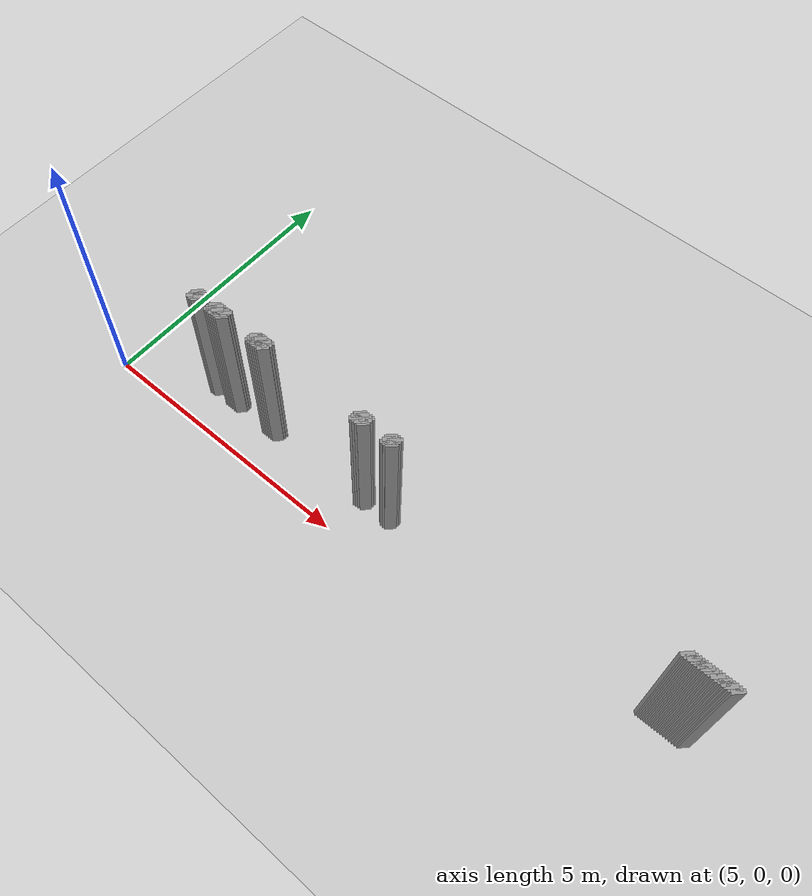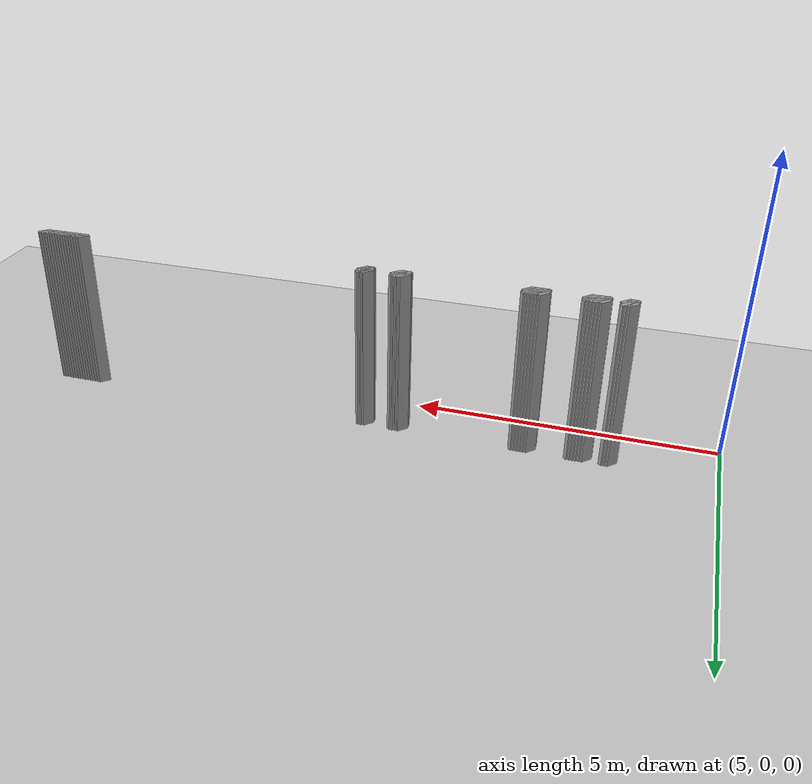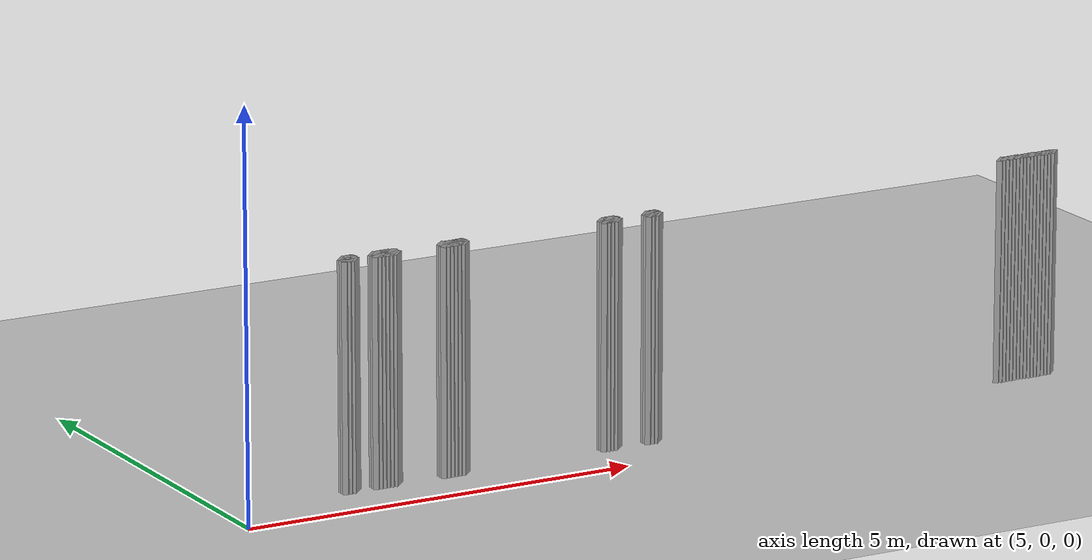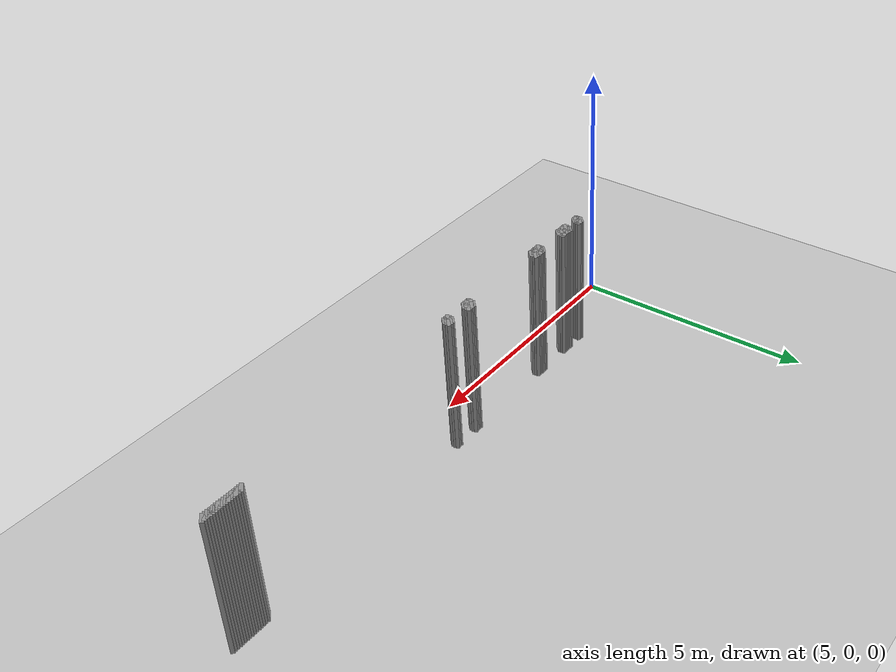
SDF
<sdf version="1.5">
 <world name="default">
  <include><uri>model://ground_plane</uri></include>
  <include><uri>model://sun</uri></include>
  <model name="grey_wall_2882">
   <static>1</static>
   <link name="link">
    <pose>15.700000000000001 0.8500000000000001  1.4 0 0 -0.7853981633974416</pose>
    <collision name="collision">
     <geometry><box><size>0.07071067811865529 .2  2.8</size></box></geometry>
    </collision>
    <visual name="visual">
     <cast_shadows>0</cast_shadows>
     <geometry><box><size>0.07071067811865529 .2  2.8</size></box></geometry>
     <material>
      <script>
       <uri>model://grey_wall/materials/scripts</uri>
       <uri>model://grey_wall/materials/textures</uri>
       <name>vrc/grey_wall</name>
      </script>
     </material>
    </visual>
   </link>
  </model>
  <model name="grey_wall_2883">
   <static>1</static>
   <link name="link">
    <pose>15.75 0.8500000000000001  1.4 0 0 -0.7853981633974416</pose>
    <collision name="collision">
     <geometry><box><size>0.07071067811865529 .2  2.8</size></box></geometry>
    </collision>
    <visual name="visual">
     <cast_shadows>0</cast_shadows>
     <geometry><box><size>0.07071067811865529 .2  2.8</size></box></geometry>
     <material>
      <script>
       <uri>model://grey_wall/materials/scripts</uri>
       <uri>model://grey_wall/materials/textures</uri>
       <name>vrc/grey_wall</name>
      </script>
     </material>
    </visual>
   </link>
  </model>
  <model name="grey_wall_2884">
   <static>1</static>
   <link name="link">
    <pose>15.8 0.8500000000000001  1.4 0 0 -0.7853981633974416</pose>
    <collision name="collision">
     <geometry><box><size>0.07071067811865529 .2  2.8</size></box></geometry>
    </collision>
    <visual name="visual">
     <cast_shadows>0</cast_shadows>
     <geometry><box><size>0.07071067811865529 .2  2.8</size></box></geometry>
     <material>
      <script>
       <uri>model://grey_wall/materials/scripts</uri>
       <uri>model://grey_wall/materials/textures</uri>
       <name>vrc/grey_wall</name>
      </script>
     </material>
    </visual>
   </link>
  </model>
  <model name="grey_wall_2885">
   <static>1</static>
   <link name="link">
    <pose>15.850000000000001 0.8500000000000001  1.4 0 0 -0.7853981633974416</pose>
    <collision name="collision">
     <geometry><box><size>0.07071067811865529 .2  2.8</size></box></geometry>
    </collision>
    <visual name="visual">
     <cast_shadows>0</cast_shadows>
     <geometry><box><size>0.07071067811865529 .2  2.8</size></box></geometry>
     <material>
      <script>
       <uri>model://grey_wall/materials/scripts</uri>
       <uri>model://grey_wall/materials/textures</uri>
       <name>vrc/grey_wall</name>
      </script>
     </material>
    </visual>
   </link>
  </model>
  <model name="grey_wall_2886">
   <static>1</static>
   <link name="link">
    <pose>15.9 0.8500000000000001  1.4 0 0 -0.7853981633974416</pose>
    <collision name="collision">
     <geometry><box><size>0.07071067811865529 .2  2.8</size></box></geometry>
    </collision>
    <visual name="visual">
     <cast_shadows>0</cast_shadows>
     <geometry><box><size>0.07071067811865529 .2  2.8</size></box></geometry>
     <material>
      <script>
       <uri>model://grey_wall/materials/scripts</uri>
       <uri>model://grey_wall/materials/textures</uri>
       <name>vrc/grey_wall</name>
      </script>
     </material>
    </visual>
   </link>
  </model>
  <model name="grey_wall_2887">
   <static>1</static>
   <link name="link">
    <pose>15.950000000000001 0.8500000000000001  1.4 0 0 -0.7853981633974416</pose>
    <collision name="collision">
     <geometry><box><size>0.07071067811865529 .2  2.8</size></box></geometry>
    </collision>
    <visual name="visual">
     <cast_shadows>0</cast_shadows>
     <geometry><box><size>0.07071067811865529 .2  2.8</size></box></geometry>
     <material>
      <script>
       <uri>model://grey_wall/materials/scripts</uri>
       <uri>model://grey_wall/materials/textures</uri>
       <name>vrc/grey_wall</name>
      </script>
     </material>
    </visual>
   </link>
  </model>
  <model name="grey_wall_2888">
   <static>1</static>
   <link name="link">
    <pose>16.0 0.8500000000000001  1.4 0 0 -0.7853981633974594</pose>
    <collision name="collision">
     <geometry><box><size>0.07071067811865403 .2  2.8</size></box></geometry>
    </collision>
    <visual name="visual">
     <cast_shadows>0</cast_shadows>
     <geometry><box><size>0.07071067811865403 .2  2.8</size></box></geometry>
     <material>
      <script>
       <uri>model://grey_wall/materials/scripts</uri>
       <uri>model://grey_wall/materials/textures</uri>
       <name>vrc/grey_wall</name>
      </script>
     </material>
    </visual>
   </link>
  </model>
  <model name="grey_wall_2889">
   <static>1</static>
   <link name="link">
    <pose>16.05 0.8500000000000001  1.4 0 0 -0.7853981633974771</pose>
    <collision name="collision">
     <geometry><box><size>0.07071067811865277 .2  2.8</size></box></geometry>
    </collision>
    <visual name="visual">
     <cast_shadows>0</cast_shadows>
     <geometry><box><size>0.07071067811865277 .2  2.8</size></box></geometry>
     <material>
      <script>
       <uri>model://grey_wall/materials/scripts</uri>
       <uri>model://grey_wall/materials/textures</uri>
       <name>vrc/grey_wall</name>
      </script>
     </material>
    </visual>
   </link>
  </model>
  <model name="grey_wall_2890">
   <static>1</static>
   <link name="link">
    <pose>16.1 0.8500000000000001  1.4 0 0 -0.7853981633974771</pose>
    <collision name="collision">
     <geometry><box><size>0.07071067811865277 .2  2.8</size></box></geometry>
    </collision>
    <visual name="visual">
     <cast_shadows>0</cast_shadows>
     <geometry><box><size>0.07071067811865277 .2  2.8</size></box></geometry>
     <material>
      <script>
       <uri>model://grey_wall/materials/scripts</uri>
       <uri>model://grey_wall/materials/textures</uri>
       <name>vrc/grey_wall</name>
      </script>
     </material>
    </visual>
   </link>
  </model>
  <model name="grey_wall_2891">
   <static>1</static>
   <link name="link">
    <pose>16.150000000000002 0.8500000000000001  1.4 0 0 -0.7853981633974771</pose>
    <collision name="collision">
     <geometry><box><size>0.07071067811865277 .2  2.8</size></box></geometry>
    </collision>
    <visual name="visual">
     <cast_shadows>0</cast_shadows>
     <geometry><box><size>0.07071067811865277 .2  2.8</size></box></geometry>
     <material>
      <script>
       <uri>model://grey_wall/materials/scripts</uri>
       <uri>model://grey_wall/materials/textures</uri>
       <name>vrc/grey_wall</name>
      </script>
     </material>
    </visual>
   </link>
  </model>
  <model name="grey_wall_2892">
   <static>1</static>
   <link name="link">
    <pose>16.2 0.8500000000000001  1.4 0 0 -0.7853981633974771</pose>
    <collision name="collision">
     <geometry><box><size>0.07071067811865277 .2  2.8</size></box></geometry>
    </collision>
    <visual name="visual">
     <cast_shadows>0</cast_shadows>
     <geometry><box><size>0.07071067811865277 .2  2.8</size></box></geometry>
     <material>
      <script>
       <uri>model://grey_wall/materials/scripts</uri>
       <uri>model://grey_wall/materials/textures</uri>
       <name>vrc/grey_wall</name>
      </script>
     </material>
    </visual>
   </link>
  </model>
  <model name="grey_wall_2893">
   <static>1</static>
   <link name="link">
    <pose>16.25 0.8500000000000001  1.4 0 0 -0.7853981633974771</pose>
    <collision name="collision">
     <geometry><box><size>0.07071067811865277 .2  2.8</size></box></geometry>
    </collision>
    <visual name="visual">
     <cast_shadows>0</cast_shadows>
     <geometry><box><size>0.07071067811865277 .2  2.8</size></box></geometry>
     <material>
      <script>
       <uri>model://grey_wall/materials/scripts</uri>
       <uri>model://grey_wall/materials/textures</uri>
       <name>vrc/grey_wall</name>
      </script>
     </material>
    </visual>
   </link>
  </model>
  <model name="grey_wall_2894">
   <static>1</static>
   <link name="link">
    <pose>16.3 0.8500000000000001  1.4 0 0 -0.7853981633974771</pose>
    <collision name="collision">
     <geometry><box><size>0.07071067811865277 .2  2.8</size></box></geometry>
    </collision>
    <visual name="visual">
     <cast_shadows>0</cast_shadows>
     <geometry><box><size>0.07071067811865277 .2  2.8</size></box></geometry>
     <material>
      <script>
       <uri>model://grey_wall/materials/scripts</uri>
       <uri>model://grey_wall/materials/textures</uri>
       <name>vrc/grey_wall</name>
      </script>
     </material>
    </visual>
   </link>
  </model>
  <model name="grey_wall_2895">
   <static>1</static>
   <link name="link">
    <pose>16.35 0.8500000000000001  1.4 0 0 -0.7853981633974771</pose>
    <collision name="collision">
     <geometry><box><size>0.07071067811865277 .2  2.8</size></box></geometry>
    </collision>
    <visual name="visual">
     <cast_shadows>0</cast_shadows>
     <geometry><box><size>0.07071067811865277 .2  2.8</size></box></geometry>
     <material>
      <script>
       <uri>model://grey_wall/materials/scripts</uri>
       <uri>model://grey_wall/materials/textures</uri>
       <name>vrc/grey_wall</name>
      </script>
     </material>
    </visual>
   </link>
  </model>
  <model name="grey_wall_2896">
   <static>1</static>
   <link name="link">
    <pose>16.400000000000002 0.8500000000000001  1.4 0 0 -0.7853981633974771</pose>
    <collision name="collision">
     <geometry><box><size>0.07071067811865277 .2  2.8</size></box></geometry>
    </collision>
    <visual name="visual">
     <cast_shadows>0</cast_shadows>
     <geometry><box><size>0.07071067811865277 .2  2.8</size></box></geometry>
     <material>
      <script>
       <uri>model://grey_wall/materials/scripts</uri>
       <uri>model://grey_wall/materials/textures</uri>
       <name>vrc/grey_wall</name>
      </script>
     </material>
    </visual>
   </link>
  </model>
  <model name="grey_wall_2897">
   <static>1</static>
   <link name="link">
    <pose>16.45 0.8500000000000001  1.4 0 0 -0.7853981633974771</pose>
    <collision name="collision">
     <geometry><box><size>0.07071067811865277 .2  2.8</size></box></geometry>
    </collision>
    <visual name="visual">
     <cast_shadows>0</cast_shadows>
     <geometry><box><size>0.07071067811865277 .2  2.8</size></box></geometry>
     <material>
      <script>
       <uri>model://grey_wall/materials/scripts</uri>
       <uri>model://grey_wall/materials/textures</uri>
       <name>vrc/grey_wall</name>
      </script>
     </material>
    </visual>
   </link>
  </model>
  <model name="grey_wall_2898">
   <static>1</static>
   <link name="link">
    <pose>6.65 0.8  1.4 0 0 -0.7853981633974416</pose>
    <collision name="collision">
     <geometry><box><size>0.07071067811865529 .2  2.8</size></box></geometry>
    </collision>
    <visual name="visual">
     <cast_shadows>0</cast_shadows>
     <geometry><box><size>0.07071067811865529 .2  2.8</size></box></geometry>
     <material>
      <script>
       <uri>model://grey_wall/materials/scripts</uri>
       <uri>model://grey_wall/materials/textures</uri>
       <name>vrc/grey_wall</name>
      </script>
     </material>
    </visual>
   </link>
  </model>
  <model name="grey_wall_2899">
   <static>1</static>
   <link name="link">
    <pose>6.7 0.8  1.4 0 0 -0.7853981633974416</pose>
    <collision name="collision">
     <geometry><box><size>0.07071067811865529 .2  2.8</size></box></geometry>
    </collision>
    <visual name="visual">
     <cast_shadows>0</cast_shadows>
     <geometry><box><size>0.07071067811865529 .2  2.8</size></box></geometry>
     <material>
      <script>
       <uri>model://grey_wall/materials/scripts</uri>
       <uri>model://grey_wall/materials/textures</uri>
       <name>vrc/grey_wall</name>
      </script>
     </material>
    </visual>
   </link>
  </model>
  <model name="grey_wall_2900">
   <static>1</static>
   <link name="link">
    <pose>6.75 0.8  1.4 0 0 -0.7853981633974416</pose>
    <collision name="collision">
     <geometry><box><size>0.07071067811865529 .2  2.8</size></box></geometry>
    </collision>
    <visual name="visual">
     <cast_shadows>0</cast_shadows>
     <geometry><box><size>0.07071067811865529 .2  2.8</size></box></geometry>
     <material>
      <script>
       <uri>model://grey_wall/materials/scripts</uri>
       <uri>model://grey_wall/materials/textures</uri>
       <name>vrc/grey_wall</name>
      </script>
     </material>
    </visual>
   </link>
  </model>
  <model name="grey_wall_2901">
   <static>1</static>
   <link name="link">
    <pose>7.050000000000001 0.8  1.4 0 0 -0.7853981633974416</pose>
    <collision name="collision">
     <geometry><box><size>0.07071067811865529 .2  2.8</size></box></geometry>
    </collision>
    <visual name="visual">
     <cast_shadows>0</cast_shadows>
     <geometry><box><size>0.07071067811865529 .2  2.8</size></box></geometry>
     <material>
      <script>
       <uri>model://grey_wall/materials/scripts</uri>
       <uri>model://grey_wall/materials/textures</uri>
       <name>vrc/grey_wall</name>
      </script>
     </material>
    </visual>
   </link>
  </model>
  <model name="grey_wall_2902">
   <static>1</static>
   <link name="link">
    <pose>7.1000000000000005 0.8  1.4 0 0 -0.7853981633974416</pose>
    <collision name="collision">
     <geometry><box><size>0.07071067811865529 .2  2.8</size></box></geometry>
    </collision>
    <visual name="visual">
     <cast_shadows>0</cast_shadows>
     <geometry><box><size>0.07071067811865529 .2  2.8</size></box></geometry>
     <material>
      <script>
       <uri>model://grey_wall/materials/scripts</uri>
       <uri>model://grey_wall/materials/textures</uri>
       <name>vrc/grey_wall</name>
      </script>
     </material>
    </visual>
   </link>
  </model>
  <model name="grey_wall_2903">
   <static>1</static>
   <link name="link">
    <pose>7.15 0.8  1.4 0 0 -0.7853981633974416</pose>
    <collision name="collision">
     <geometry><box><size>0.07071067811865529 .2  2.8</size></box></geometry>
    </collision>
    <visual name="visual">
     <cast_shadows>0</cast_shadows>
     <geometry><box><size>0.07071067811865529 .2  2.8</size></box></geometry>
     <material>
      <script>
       <uri>model://grey_wall/materials/scripts</uri>
       <uri>model://grey_wall/materials/textures</uri>
       <name>vrc/grey_wall</name>
      </script>
     </material>
    </visual>
   </link>
  </model>
  <model name="grey_wall_2904">
   <static>1</static>
   <link name="link">
    <pose>7.2 0.8  1.4 0 0 -0.7853981633974416</pose>
    <collision name="collision">
     <geometry><box><size>0.07071067811865529 .2  2.8</size></box></geometry>
    </collision>
    <visual name="visual">
     <cast_shadows>0</cast_shadows>
     <geometry><box><size>0.07071067811865529 .2  2.8</size></box></geometry>
     <material>
      <script>
       <uri>model://grey_wall/materials/scripts</uri>
       <uri>model://grey_wall/materials/textures</uri>
       <name>vrc/grey_wall</name>
      </script>
     </material>
    </visual>
   </link>
  </model>
  <model name="grey_wall_2905">
   <static>1</static>
   <link name="link">
    <pose>7.25 0.8  1.4 0 0 -0.7853981633974416</pose>
    <collision name="collision">
     <geometry><box><size>0.07071067811865529 .2  2.8</size></box></geometry>
    </collision>
    <visual name="visual">
     <cast_shadows>0</cast_shadows>
     <geometry><box><size>0.07071067811865529 .2  2.8</size></box></geometry>
     <material>
      <script>
       <uri>model://grey_wall/materials/scripts</uri>
       <uri>model://grey_wall/materials/textures</uri>
       <name>vrc/grey_wall</name>
      </script>
     </material>
    </visual>
   </link>
  </model>
  <model name="grey_wall_2906">
   <static>1</static>
   <link name="link">
    <pose>7.300000000000001 0.8  1.4 0 0 -0.7853981633974416</pose>
    <collision name="collision">
     <geometry><box><size>0.07071067811865529 .2  2.8</size></box></geometry>
    </collision>
    <visual name="visual">
     <cast_shadows>0</cast_shadows>
     <geometry><box><size>0.07071067811865529 .2  2.8</size></box></geometry>
     <material>
      <script>
       <uri>model://grey_wall/materials/scripts</uri>
       <uri>model://grey_wall/materials/textures</uri>
       <name>vrc/grey_wall</name>
      </script>
     </material>
    </visual>
   </link>
  </model>
  <model name="grey_wall_2907">
   <static>1</static>
   <link name="link">
    <pose>7.95 0.8  1.4 0 0 -0.7853981633974416</pose>
    <collision name="collision">
     <geometry><box><size>0.07071067811865529 .2  2.8</size></box></geometry>
    </collision>
    <visual name="visual">
     <cast_shadows>0</cast_shadows>
     <geometry><box><size>0.07071067811865529 .2  2.8</size></box></geometry>
     <material>
      <script>
       <uri>model://grey_wall/materials/scripts</uri>
       <uri>model://grey_wall/materials/textures</uri>
       <name>vrc/grey_wall</name>
      </script>
     </material>
    </visual>
   </link>
  </model>
  <model name="grey_wall_2908">
   <static>1</static>
   <link name="link">
    <pose>8.0 0.8  1.4 0 0 -0.7853981633974416</pose>
    <collision name="collision">
     <geometry><box><size>0.07071067811865529 .2  2.8</size></box></geometry>
    </collision>
    <visual name="visual">
     <cast_shadows>0</cast_shadows>
     <geometry><box><size>0.07071067811865529 .2  2.8</size></box></geometry>
     <material>
      <script>
       <uri>model://grey_wall/materials/scripts</uri>
       <uri>model://grey_wall/materials/textures</uri>
       <name>vrc/grey_wall</name>
      </script>
     </material>
    </visual>
   </link>
  </model>
  <model name="grey_wall_2909">
   <static>1</static>
   <link name="link">
    <pose>8.05 0.8  1.4 0 0 -0.7853981633974416</pose>
    <collision name="collision">
     <geometry><box><size>0.07071067811865529 .2  2.8</size></box></geometry>
    </collision>
    <visual name="visual">
     <cast_shadows>0</cast_shadows>
     <geometry><box><size>0.07071067811865529 .2  2.8</size></box></geometry>
     <material>
      <script>
       <uri>model://grey_wall/materials/scripts</uri>
       <uri>model://grey_wall/materials/textures</uri>
       <name>vrc/grey_wall</name>
      </script>
     </material>
    </visual>
   </link>
  </model>
  <model name="grey_wall_2910">
   <static>1</static>
   <link name="link">
    <pose>8.1 0.8  1.4 0 0 -0.7853981633974416</pose>
    <collision name="collision">
     <geometry><box><size>0.07071067811865529 .2  2.8</size></box></geometry>
    </collision>
    <visual name="visual">
     <cast_shadows>0</cast_shadows>
     <geometry><box><size>0.07071067811865529 .2  2.8</size></box></geometry>
     <material>
      <script>
       <uri>model://grey_wall/materials/scripts</uri>
       <uri>model://grey_wall/materials/textures</uri>
       <name>vrc/grey_wall</name>
      </script>
     </material>
    </visual>
   </link>
  </model>
  <model name="grey_wall_2911">
   <static>1</static>
   <link name="link">
    <pose>8.15 0.8  1.4 0 0 -0.7853981633974416</pose>
    <collision name="collision">
     <geometry><box><size>0.07071067811865529 .2  2.8</size></box></geometry>
    </collision>
    <visual name="visual">
     <cast_shadows>0</cast_shadows>
     <geometry><box><size>0.07071067811865529 .2  2.8</size></box></geometry>
     <material>
      <script>
       <uri>model://grey_wall/materials/scripts</uri>
       <uri>model://grey_wall/materials/textures</uri>
       <name>vrc/grey_wall</name>
      </script>
     </material>
    </visual>
   </link>
  </model>
  <model name="grey_wall_2912">
   <static>1</static>
   <link name="link">
    <pose>8.200000000000001 0.8  1.4 0 0 -0.7853981633974416</pose>
    <collision name="collision">
     <geometry><box><size>0.07071067811865529 .2  2.8</size></box></geometry>
    </collision>
    <visual name="visual">
     <cast_shadows>0</cast_shadows>
     <geometry><box><size>0.07071067811865529 .2  2.8</size></box></geometry>
     <material>
      <script>
       <uri>model://grey_wall/materials/scripts</uri>
       <uri>model://grey_wall/materials/textures</uri>
       <name>vrc/grey_wall</name>
      </script>
     </material>
    </visual>
   </link>
  </model>
  <model name="grey_wall_2913">
   <static>1</static>
   <link name="link">
    <pose>10.100000000000001 0.8  1.4 0 0 -0.7853981633974416</pose>
    <collision name="collision">
     <geometry><box><size>0.07071067811865529 .2  2.8</size></box></geometry>
    </collision>
    <visual name="visual">
     <cast_shadows>0</cast_shadows>
     <geometry><box><size>0.07071067811865529 .2  2.8</size></box></geometry>
     <material>
      <script>
       <uri>model://grey_wall/materials/scripts</uri>
       <uri>model://grey_wall/materials/textures</uri>
       <name>vrc/grey_wall</name>
      </script>
     </material>
    </visual>
   </link>
  </model>
  <model name="grey_wall_2914">
   <static>1</static>
   <link name="link">
    <pose>10.15 0.8  1.4 0 0 -0.7853981633974416</pose>
    <collision name="collision">
     <geometry><box><size>0.07071067811865529 .2  2.8</size></box></geometry>
    </collision>
    <visual name="visual">
     <cast_shadows>0</cast_shadows>
     <geometry><box><size>0.07071067811865529 .2  2.8</size></box></geometry>
     <material>
      <script>
       <uri>model://grey_wall/materials/scripts</uri>
       <uri>model://grey_wall/materials/textures</uri>
       <name>vrc/grey_wall</name>
      </script>
     </material>
    </visual>
   </link>
  </model>
  <model name="grey_wall_2915">
   <static>1</static>
   <link name="link">
    <pose>10.200000000000001 0.8  1.4 0 0 -0.7853981633974416</pose>
    <collision name="collision">
     <geometry><box><size>0.07071067811865529 .2  2.8</size></box></geometry>
    </collision>
    <visual name="visual">
     <cast_shadows>0</cast_shadows>
     <geometry><box><size>0.07071067811865529 .2  2.8</size></box></geometry>
     <material>
      <script>
       <uri>model://grey_wall/materials/scripts</uri>
       <uri>model://grey_wall/materials/textures</uri>
       <name>vrc/grey_wall</name>
      </script>
     </material>
    </visual>
   </link>
  </model>
  <model name="grey_wall_2916">
   <static>1</static>
   <link name="link">
    <pose>10.25 0.8  1.4 0 0 -0.7853981633974416</pose>
    <collision name="collision">
     <geometry><box><size>0.07071067811865529 .2  2.8</size></box></geometry>
    </collision>
    <visual name="visual">
     <cast_shadows>0</cast_shadows>
     <geometry><box><size>0.07071067811865529 .2  2.8</size></box></geometry>
     <material>
      <script>
       <uri>model://grey_wall/materials/scripts</uri>
       <uri>model://grey_wall/materials/textures</uri>
       <name>vrc/grey_wall</name>
      </script>
     </material>
    </visual>
   </link>
  </model>
  <model name="grey_wall_2917">
   <static>1</static>
   <link name="link">
    <pose>10.700000000000001 0.8  1.4 0 0 -0.7853981633974416</pose>
    <collision name="collision">
     <geometry><box><size>0.07071067811865529 .2  2.8</size></box></geometry>
    </collision>
    <visual name="visual">
     <cast_shadows>0</cast_shadows>
     <geometry><box><size>0.07071067811865529 .2  2.8</size></box></geometry>
     <material>
      <script>
       <uri>model://grey_wall/materials/scripts</uri>
       <uri>model://grey_wall/materials/textures</uri>
       <name>vrc/grey_wall</name>
      </script>
     </material>
    </visual>
   </link>
  </model>
  <model name="grey_wall_2918">
   <static>1</static>
   <link name="link">
    <pose>10.75 0.8  1.4 0 0 -0.7853981633974416</pose>
    <collision name="collision">
     <geometry><box><size>0.07071067811865529 .2  2.8</size></box></geometry>
    </collision>
    <visual name="visual">
     <cast_shadows>0</cast_shadows>
     <geometry><box><size>0.07071067811865529 .2  2.8</size></box></geometry>
     <material>
      <script>
       <uri>model://grey_wall/materials/scripts</uri>
       <uri>model://grey_wall/materials/textures</uri>
       <name>vrc/grey_wall</name>
      </script>
     </material>
    </visual>
   </link>
  </model>
  <model name="grey_wall_2919">
   <static>1</static>
   <link name="link">
    <pose>10.8 0.8  1.4 0 0 -0.7853981633974416</pose>
    <collision name="collision">
     <geometry><box><size>0.07071067811865529 .2  2.8</size></box></geometry>
    </collision>
    <visual name="visual">
     <cast_shadows>0</cast_shadows>
     <geometry><box><size>0.07071067811865529 .2  2.8</size></box></geometry>
     <material>
      <script>
       <uri>model://grey_wall/materials/scripts</uri>
       <uri>model://grey_wall/materials/textures</uri>
       <name>vrc/grey_wall</name>
      </script>
     </material>
    </visual>
   </link>
  </model>
  <model name="grey_wall_2920">
   <static>1</static>
   <link name="link">
    <pose>6.65 0.75  1.4 0 0 -0.7853981633974416</pose>
    <collision name="collision">
     <geometry><box><size>0.07071067811865529 .2  2.8</size></box></geometry>
    </collision>
    <visual name="visual">
     <cast_shadows>0</cast_shadows>
     <geometry><box><size>0.07071067811865529 .2  2.8</size></box></geometry>
     <material>
      <script>
       <uri>model://grey_wall/materials/scripts</uri>
       <uri>model://grey_wall/materials/textures</uri>
       <name>vrc/grey_wall</name>
      </script>
     </material>
    </visual>
   </link>
  </model>
  <model name="grey_wall_2921">
   <static>1</static>
   <link name="link">
    <pose>6.75 0.75  1.4 0 0 -0.7853981633974416</pose>
    <collision name="collision">
     <geometry><box><size>0.07071067811865529 .2  2.8</size></box></geometry>
    </collision>
    <visual name="visual">
     <cast_shadows>0</cast_shadows>
     <geometry><box><size>0.07071067811865529 .2  2.8</size></box></geometry>
     <material>
      <script>
       <uri>model://grey_wall/materials/scripts</uri>
       <uri>model://grey_wall/materials/textures</uri>
       <name>vrc/grey_wall</name>
      </script>
     </material>
    </visual>
   </link>
  </model>
  <model name="grey_wall_2922">
   <static>1</static>
   <link name="link">
    <pose>7.050000000000001 0.75  1.4 0 0 -0.7853981633974416</pose>
    <collision name="collision">
     <geometry><box><size>0.07071067811865529 .2  2.8</size></box></geometry>
    </collision>
    <visual name="visual">
     <cast_shadows>0</cast_shadows>
     <geometry><box><size>0.07071067811865529 .2  2.8</size></box></geometry>
     <material>
      <script>
       <uri>model://grey_wall/materials/scripts</uri>
       <uri>model://grey_wall/materials/textures</uri>
       <name>vrc/grey_wall</name>
      </script>
     </material>
    </visual>
   </link>
  </model>
  <model name="grey_wall_2923">
   <static>1</static>
   <link name="link">
    <pose>7.15 0.75  1.4 0 0 -0.7853981633974416</pose>
    <collision name="collision">
     <geometry><box><size>0.07071067811865529 .2  2.8</size></box></geometry>
    </collision>
    <visual name="visual">
     <cast_shadows>0</cast_shadows>
     <geometry><box><size>0.07071067811865529 .2  2.8</size></box></geometry>
     <material>
      <script>
       <uri>model://grey_wall/materials/scripts</uri>
       <uri>model://grey_wall/materials/textures</uri>
       <name>vrc/grey_wall</name>
      </script>
     </material>
    </visual>
   </link>
  </model>
  <model name="grey_wall_2924">
   <static>1</static>
   <link name="link">
    <pose>7.300000000000001 0.75  1.4 0 0 -0.7853981633974416</pose>
    <collision name="collision">
     <geometry><box><size>0.07071067811865529 .2  2.8</size></box></geometry>
    </collision>
    <visual name="visual">
     <cast_shadows>0</cast_shadows>
     <geometry><box><size>0.07071067811865529 .2  2.8</size></box></geometry>
     <material>
      <script>
       <uri>model://grey_wall/materials/scripts</uri>
       <uri>model://grey_wall/materials/textures</uri>
       <name>vrc/grey_wall</name>
      </script>
     </material>
    </visual>
   </link>
  </model>
  <model name="grey_wall_2925">
   <static>1</static>
   <link name="link">
    <pose>7.95 0.75  1.4 0 0 -0.7853981633974416</pose>
    <collision name="collision">
     <geometry><box><size>0.07071067811865529 .2  2.8</size></box></geometry>
    </collision>
    <visual name="visual">
     <cast_shadows>0</cast_shadows>
     <geometry><box><size>0.07071067811865529 .2  2.8</size></box></geometry>
     <material>
      <script>
       <uri>model://grey_wall/materials/scripts</uri>
       <uri>model://grey_wall/materials/textures</uri>
       <name>vrc/grey_wall</name>
      </script>
     </material>
    </visual>
   </link>
  </model>
  <model name="grey_wall_2926">
   <static>1</static>
   <link name="link">
    <pose>8.05 0.75  1.4 0 0 -0.7853981633974416</pose>
    <collision name="collision">
     <geometry><box><size>0.07071067811865529 .2  2.8</size></box></geometry>
    </collision>
    <visual name="visual">
     <cast_shadows>0</cast_shadows>
     <geometry><box><size>0.07071067811865529 .2  2.8</size></box></geometry>
     <material>
      <script>
       <uri>model://grey_wall/materials/scripts</uri>
       <uri>model://grey_wall/materials/textures</uri>
       <name>vrc/grey_wall</name>
      </script>
     </material>
    </visual>
   </link>
  </model>
  <model name="grey_wall_2927">
   <static>1</static>
   <link name="link">
    <pose>8.1 0.75  1.4 0 0 -0.7853981633974416</pose>
    <collision name="collision">
     <geometry><box><size>0.07071067811865529 .2  2.8</size></box></geometry>
    </collision>
    <visual name="visual">
     <cast_shadows>0</cast_shadows>
     <geometry><box><size>0.07071067811865529 .2  2.8</size></box></geometry>
     <material>
      <script>
       <uri>model://grey_wall/materials/scripts</uri>
       <uri>model://grey_wall/materials/textures</uri>
       <name>vrc/grey_wall</name>
      </script>
     </material>
    </visual>
   </link>
  </model>
  <model name="grey_wall_2928">
   <static>1</static>
   <link name="link">
    <pose>8.200000000000001 0.75  1.4 0 0 -0.7853981633974416</pose>
    <collision name="collision">
     <geometry><box><size>0.07071067811865529 .2  2.8</size></box></geometry>
    </collision>
    <visual name="visual">
     <cast_shadows>0</cast_shadows>
     <geometry><box><size>0.07071067811865529 .2  2.8</size></box></geometry>
     <material>
      <script>
       <uri>model://grey_wall/materials/scripts</uri>
       <uri>model://grey_wall/materials/textures</uri>
       <name>vrc/grey_wall</name>
      </script>
     </material>
    </visual>
   </link>
  </model>
  <model name="grey_wall_2929">
   <static>1</static>
   <link name="link">
    <pose>10.100000000000001 0.75  1.4 0 0 -0.7853981633974416</pose>
    <collision name="collision">
     <geometry><box><size>0.07071067811865529 .2  2.8</size></box></geometry>
    </collision>
    <visual name="visual">
     <cast_shadows>0</cast_shadows>
     <geometry><box><size>0.07071067811865529 .2  2.8</size></box></geometry>
     <material>
      <script>
       <uri>model://grey_wall/materials/scripts</uri>
       <uri>model://grey_wall/materials/textures</uri>
       <name>vrc/grey_wall</name>
      </script>
     </material>
    </visual>
   </link>
  </model>
  <model name="grey_wall_2930">
   <static>1</static>
   <link name="link">
    <pose>10.25 0.75  1.4 0 0 -0.7853981633974416</pose>
    <collision name="collision">
     <geometry><box><size>0.07071067811865529 .2  2.8</size></box></geometry>
    </collision>
    <visual name="visual">
     <cast_shadows>0</cast_shadows>
     <geometry><box><size>0.07071067811865529 .2  2.8</size></box></geometry>
     <material>
      <script>
       <uri>model://grey_wall/materials/scripts</uri>
       <uri>model://grey_wall/materials/textures</uri>
       <name>vrc/grey_wall</name>
      </script>
     </material>
    </visual>
   </link>
  </model>
  <model name="grey_wall_2931">
   <static>1</static>
   <link name="link">
    <pose>10.700000000000001 0.75  1.4 0 0 -0.7853981633974416</pose>
    <collision name="collision">
     <geometry><box><size>0.07071067811865529 .2  2.8</size></box></geometry>
    </collision>
    <visual name="visual">
     <cast_shadows>0</cast_shadows>
     <geometry><box><size>0.07071067811865529 .2  2.8</size></box></geometry>
     <material>
      <script>
       <uri>model://grey_wall/materials/scripts</uri>
       <uri>model://grey_wall/materials/textures</uri>
       <name>vrc/grey_wall</name>
      </script>
     </material>
    </visual>
   </link>
  </model>
  <model name="grey_wall_2932">
   <static>1</static>
   <link name="link">
    <pose>10.8 0.75  1.4 0 0 -0.7853981633974416</pose>
    <collision name="collision">
     <geometry><box><size>0.07071067811865529 .2  2.8</size></box></geometry>
    </collision>
    <visual name="visual">
     <cast_shadows>0</cast_shadows>
     <geometry><box><size>0.07071067811865529 .2  2.8</size></box></geometry>
     <material>
      <script>
       <uri>model://grey_wall/materials/scripts</uri>
       <uri>model://grey_wall/materials/textures</uri>
       <name>vrc/grey_wall</name>
      </script>
     </material>
    </visual>
   </link>
  </model>
  <model name="grey_wall_2933">
   <static>1</static>
   <link name="link">
    <pose>6.65 0.7000000000000001  1.4 0 0 -0.7853981633974416</pose>
    <collision name="collision">
     <geometry><box><size>0.07071067811865529 .2  2.8</size></box></geometry>
    </collision>
    <visual name="visual">
     <cast_shadows>0</cast_shadows>
     <geometry><box><size>0.07071067811865529 .2  2.8</size></box></geometry>
     <material>
      <script>
       <uri>model://grey_wall/materials/scripts</uri>
       <uri>model://grey_wall/materials/textures</uri>
       <name>vrc/grey_wall</name>
      </script>
     </material>
    </visual>
   </link>
  </model>
  <model name="grey_wall_2934">
   <static>1</static>
   <link name="link">
    <pose>6.7 0.7000000000000001  1.4 0 0 -0.7853981633974416</pose>
    <collision name="collision">
     <geometry><box><size>0.07071067811865529 .2  2.8</size></box></geometry>
    </collision>
    <visual name="visual">
     <cast_shadows>0</cast_shadows>
     <geometry><box><size>0.07071067811865529 .2  2.8</size></box></geometry>
     <material>
      <script>
       <uri>model://grey_wall/materials/scripts</uri>
       <uri>model://grey_wall/materials/textures</uri>
       <name>vrc/grey_wall</name>
      </script>
     </material>
    </visual>
   </link>
  </model>
  <model name="grey_wall_2935">
   <static>1</static>
   <link name="link">
    <pose>6.75 0.7000000000000001  1.4 0 0 -0.7853981633974416</pose>
    <collision name="collision">
     <geometry><box><size>0.07071067811865529 .2  2.8</size></box></geometry>
    </collision>
    <visual name="visual">
     <cast_shadows>0</cast_shadows>
     <geometry><box><size>0.07071067811865529 .2  2.8</size></box></geometry>
     <material>
      <script>
       <uri>model://grey_wall/materials/scripts</uri>
       <uri>model://grey_wall/materials/textures</uri>
       <name>vrc/grey_wall</name>
      </script>
     </material>
    </visual>
   </link>
  </model>
  <model name="grey_wall_2936">
   <static>1</static>
   <link name="link">
    <pose>7.050000000000001 0.7000000000000001  1.4 0 0 -0.7853981633974416</pose>
    <collision name="collision">
     <geometry><box><size>0.07071067811865529 .2  2.8</size></box></geometry>
    </collision>
    <visual name="visual">
     <cast_shadows>0</cast_shadows>
     <geometry><box><size>0.07071067811865529 .2  2.8</size></box></geometry>
     <material>
      <script>
       <uri>model://grey_wall/materials/scripts</uri>
       <uri>model://grey_wall/materials/textures</uri>
       <name>vrc/grey_wall</name>
      </script>
     </material>
    </visual>
   </link>
  </model>
  <model name="grey_wall_2937">
   <static>1</static>
   <link name="link">
    <pose>7.1000000000000005 0.7000000000000001  1.4 0 0 -0.7853981633974416</pose>
    <collision name="collision">
     <geometry><box><size>0.07071067811865529 .2  2.8</size></box></geometry>
    </collision>
    <visual name="visual">
     <cast_shadows>0</cast_shadows>
     <geometry><box><size>0.07071067811865529 .2  2.8</size></box></geometry>
     <material>
      <script>
       <uri>model://grey_wall/materials/scripts</uri>
       <uri>model://grey_wall/materials/textures</uri>
       <name>vrc/grey_wall</name>
      </script>
     </material>
    </visual>
   </link>
  </model>
  <model name="grey_wall_2938">
   <static>1</static>
   <link name="link">
    <pose>7.15 0.7000000000000001  1.4 0 0 -0.7853981633974416</pose>
    <collision name="collision">
     <geometry><box><size>0.07071067811865529 .2  2.8</size></box></geometry>
    </collision>
    <visual name="visual">
     <cast_shadows>0</cast_shadows>
     <geometry><box><size>0.07071067811865529 .2  2.8</size></box></geometry>
     <material>
      <script>
       <uri>model://grey_wall/materials/scripts</uri>
       <uri>model://grey_wall/materials/textures</uri>
       <name>vrc/grey_wall</name>
      </script>
     </material>
    </visual>
   </link>
  </model>
  <model name="grey_wall_2939">
   <static>1</static>
   <link name="link">
    <pose>7.2 0.7000000000000001  1.4 0 0 -0.7853981633974416</pose>
    <collision name="collision">
     <geometry><box><size>0.07071067811865529 .2  2.8</size></box></geometry>
    </collision>
    <visual name="visual">
     <cast_shadows>0</cast_shadows>
     <geometry><box><size>0.07071067811865529 .2  2.8</size></box></geometry>
     <material>
      <script>
       <uri>model://grey_wall/materials/scripts</uri>
       <uri>model://grey_wall/materials/textures</uri>
       <name>vrc/grey_wall</name>
      </script>
     </material>
    </visual>
   </link>
  </model>
  <model name="grey_wall_2940">
   <static>1</static>
   <link name="link">
    <pose>7.25 0.7000000000000001  1.4 0 0 -0.7853981633974416</pose>
    <collision name="collision">
     <geometry><box><size>0.07071067811865529 .2  2.8</size></box></geometry>
    </collision>
    <visual name="visual">
     <cast_shadows>0</cast_shadows>
     <geometry><box><size>0.07071067811865529 .2  2.8</size></box></geometry>
     <material>
      <script>
       <uri>model://grey_wall/materials/scripts</uri>
       <uri>model://grey_wall/materials/textures</uri>
       <name>vrc/grey_wall</name>
      </script>
     </material>
    </visual>
   </link>
  </model>
  <model name="grey_wall_2941">
   <static>1</static>
   <link name="link">
    <pose>7.300000000000001 0.7000000000000001  1.4 0 0 -0.7853981633974416</pose>
    <collision name="collision">
     <geometry><box><size>0.07071067811865529 .2  2.8</size></box></geometry>
    </collision>
    <visual name="visual">
     <cast_shadows>0</cast_shadows>
     <geometry><box><size>0.07071067811865529 .2  2.8</size></box></geometry>
     <material>
      <script>
       <uri>model://grey_wall/materials/scripts</uri>
       <uri>model://grey_wall/materials/textures</uri>
       <name>vrc/grey_wall</name>
      </script>
     </material>
    </visual>
   </link>
  </model>
  <model name="grey_wall_2942">
   <static>1</static>
   <link name="link">
    <pose>7.95 0.7000000000000001  1.4 0 0 -0.7853981633974416</pose>
    <collision name="collision">
     <geometry><box><size>0.07071067811865529 .2  2.8</size></box></geometry>
    </collision>
    <visual name="visual">
     <cast_shadows>0</cast_shadows>
     <geometry><box><size>0.07071067811865529 .2  2.8</size></box></geometry>
     <material>
      <script>
       <uri>model://grey_wall/materials/scripts</uri>
       <uri>model://grey_wall/materials/textures</uri>
       <name>vrc/grey_wall</name>
      </script>
     </material>
    </visual>
   </link>
  </model>
  <model name="grey_wall_2943">
   <static>1</static>
   <link name="link">
    <pose>8.0 0.7000000000000001  1.4 0 0 -0.7853981633974416</pose>
    <collision name="collision">
     <geometry><box><size>0.07071067811865529 .2  2.8</size></box></geometry>
    </collision>
    <visual name="visual">
     <cast_shadows>0</cast_shadows>
     <geometry><box><size>0.07071067811865529 .2  2.8</size></box></geometry>
     <material>
      <script>
       <uri>model://grey_wall/materials/scripts</uri>
       <uri>model://grey_wall/materials/textures</uri>
       <name>vrc/grey_wall</name>
      </script>
     </material>
    </visual>
   </link>
  </model>
  <model name="grey_wall_2944">
   <static>1</static>
   <link name="link">
    <pose>8.05 0.7000000000000001  1.4 0 0 -0.7853981633974416</pose>
    <collision name="collision">
     <geometry><box><size>0.07071067811865529 .2  2.8</size></box></geometry>
    </collision>
    <visual name="visual">
     <cast_shadows>0</cast_shadows>
     <geometry><box><size>0.07071067811865529 .2  2.8</size></box></geometry>
     <material>
      <script>
       <uri>model://grey_wall/materials/scripts</uri>
       <uri>model://grey_wall/materials/textures</uri>
       <name>vrc/grey_wall</name>
      </script>
     </material>
    </visual>
   </link>
  </model>
  <model name="grey_wall_2945">
   <static>1</static>
   <link name="link">
    <pose>8.1 0.7000000000000001  1.4 0 0 -0.7853981633974416</pose>
    <collision name="collision">
     <geometry><box><size>0.07071067811865529 .2  2.8</size></box></geometry>
    </collision>
    <visual name="visual">
     <cast_shadows>0</cast_shadows>
     <geometry><box><size>0.07071067811865529 .2  2.8</size></box></geometry>
     <material>
      <script>
       <uri>model://grey_wall/materials/scripts</uri>
       <uri>model://grey_wall/materials/textures</uri>
       <name>vrc/grey_wall</name>
      </script>
     </material>
    </visual>
   </link>
  </model>
  <model name="grey_wall_2946">
   <static>1</static>
   <link name="link">
    <pose>8.15 0.7000000000000001  1.4 0 0 -0.7853981633974416</pose>
    <collision name="collision">
     <geometry><box><size>0.07071067811865529 .2  2.8</size></box></geometry>
    </collision>
    <visual name="visual">
     <cast_shadows>0</cast_shadows>
     <geometry><box><size>0.07071067811865529 .2  2.8</size></box></geometry>
     <material>
      <script>
       <uri>model://grey_wall/materials/scripts</uri>
       <uri>model://grey_wall/materials/textures</uri>
       <name>vrc/grey_wall</name>
      </script>
     </material>
    </visual>
   </link>
  </model>
  <model name="grey_wall_2947">
   <static>1</static>
   <link name="link">
    <pose>8.200000000000001 0.7000000000000001  1.4 0 0 -0.7853981633974416</pose>
    <collision name="collision">
     <geometry><box><size>0.07071067811865529 .2  2.8</size></box></geometry>
    </collision>
    <visual name="visual">
     <cast_shadows>0</cast_shadows>
     <geometry><box><size>0.07071067811865529 .2  2.8</size></box></geometry>
     <material>
      <script>
       <uri>model://grey_wall/materials/scripts</uri>
       <uri>model://grey_wall/materials/textures</uri>
       <name>vrc/grey_wall</name>
      </script>
     </material>
    </visual>
   </link>
  </model>
  <model name="grey_wall_2948">
   <static>1</static>
   <link name="link">
    <pose>10.100000000000001 0.7000000000000001  1.4 0 0 -0.7853981633974416</pose>
    <collision name="collision">
     <geometry><box><size>0.07071067811865529 .2  2.8</size></box></geometry>
    </collision>
    <visual name="visual">
     <cast_shadows>0</cast_shadows>
     <geometry><box><size>0.07071067811865529 .2  2.8</size></box></geometry>
     <material>
      <script>
       <uri>model://grey_wall/materials/scripts</uri>
       <uri>model://grey_wall/materials/textures</uri>
       <name>vrc/grey_wall</name>
      </script>
     </material>
    </visual>
   </link>
  </model>
  <model name="grey_wall_2949">
   <static>1</static>
   <link name="link">
    <pose>10.15 0.7000000000000001  1.4 0 0 -0.7853981633974416</pose>
    <collision name="collision">
     <geometry><box><size>0.07071067811865529 .2  2.8</size></box></geometry>
    </collision>
    <visual name="visual">
     <cast_shadows>0</cast_shadows>
     <geometry><box><size>0.07071067811865529 .2  2.8</size></box></geometry>
     <material>
      <script>
       <uri>model://grey_wall/materials/scripts</uri>
       <uri>model://grey_wall/materials/textures</uri>
       <name>vrc/grey_wall</name>
      </script>
     </material>
    </visual>
   </link>
  </model>
  <model name="grey_wall_2950">
   <static>1</static>
   <link name="link">
    <pose>10.200000000000001 0.7000000000000001  1.4 0 0 -0.7853981633974416</pose>
    <collision name="collision">
     <geometry><box><size>0.07071067811865529 .2  2.8</size></box></geometry>
    </collision>
    <visual name="visual">
     <cast_shadows>0</cast_shadows>
     <geometry><box><size>0.07071067811865529 .2  2.8</size></box></geometry>
     <material>
      <script>
       <uri>model://grey_wall/materials/scripts</uri>
       <uri>model://grey_wall/materials/textures</uri>
       <name>vrc/grey_wall</name>
      </script>
     </material>
    </visual>
   </link>
  </model>
  <model name="grey_wall_2951">
   <static>1</static>
   <link name="link">
    <pose>10.25 0.7000000000000001  1.4 0 0 -0.7853981633974416</pose>
    <collision name="collision">
     <geometry><box><size>0.07071067811865529 .2  2.8</size></box></geometry>
    </collision>
    <visual name="visual">
     <cast_shadows>0</cast_shadows>
     <geometry><box><size>0.07071067811865529 .2  2.8</size></box></geometry>
     <material>
      <script>
       <uri>model://grey_wall/materials/scripts</uri>
       <uri>model://grey_wall/materials/textures</uri>
       <name>vrc/grey_wall</name>
      </script>
     </material>
    </visual>
   </link>
  </model>
  <model name="grey_wall_2952">
   <static>1</static>
   <link name="link">
    <pose>10.700000000000001 0.7000000000000001  1.4 0 0 -0.7853981633974416</pose>
    <collision name="collision">
     <geometry><box><size>0.07071067811865529 .2  2.8</size></box></geometry>
    </collision>
    <visual name="visual">
     <cast_shadows>0</cast_shadows>
     <geometry><box><size>0.07071067811865529 .2  2.8</size></box></geometry>
     <material>
      <script>
       <uri>model://grey_wall/materials/scripts</uri>
       <uri>model://grey_wall/materials/textures</uri>
       <name>vrc/grey_wall</name>
      </script>
     </material>
    </visual>
   </link>
  </model>
  <model name="grey_wall_2953">
   <static>1</static>
   <link name="link">
    <pose>10.75 0.7000000000000001  1.4 0 0 -0.7853981633974416</pose>
    <collision name="collision">
     <geometry><box><size>0.07071067811865529 .2  2.8</size></box></geometry>
    </collision>
    <visual name="visual">
     <cast_shadows>0</cast_shadows>
     <geometry><box><size>0.07071067811865529 .2  2.8</size></box></geometry>
     <material>
      <script>
       <uri>model://grey_wall/materials/scripts</uri>
       <uri>model://grey_wall/materials/textures</uri>
       <name>vrc/grey_wall</name>
      </script>
     </material>
    </visual>
   </link>
  </model>
  <model name="grey_wall_2954">
   <static>1</static>
   <link name="link">
    <pose>10.8 0.7000000000000001  1.4 0 0 -0.7853981633974416</pose>
    <collision name="collision">
     <geometry><box><size>0.07071067811865529 .2  2.8</size></box></geometry>
    </collision>
    <visual name="visual">
     <cast_shadows>0</cast_shadows>
     <geometry><box><size>0.07071067811865529 .2  2.8</size></box></geometry>
     <material>
      <script>
       <uri>model://grey_wall/materials/scripts</uri>
       <uri>model://grey_wall/materials/textures</uri>
       <name>vrc/grey_wall</name>
      </script>
     </material>
    </visual>
   </link>
  </model>
 </world>
</sdf>
